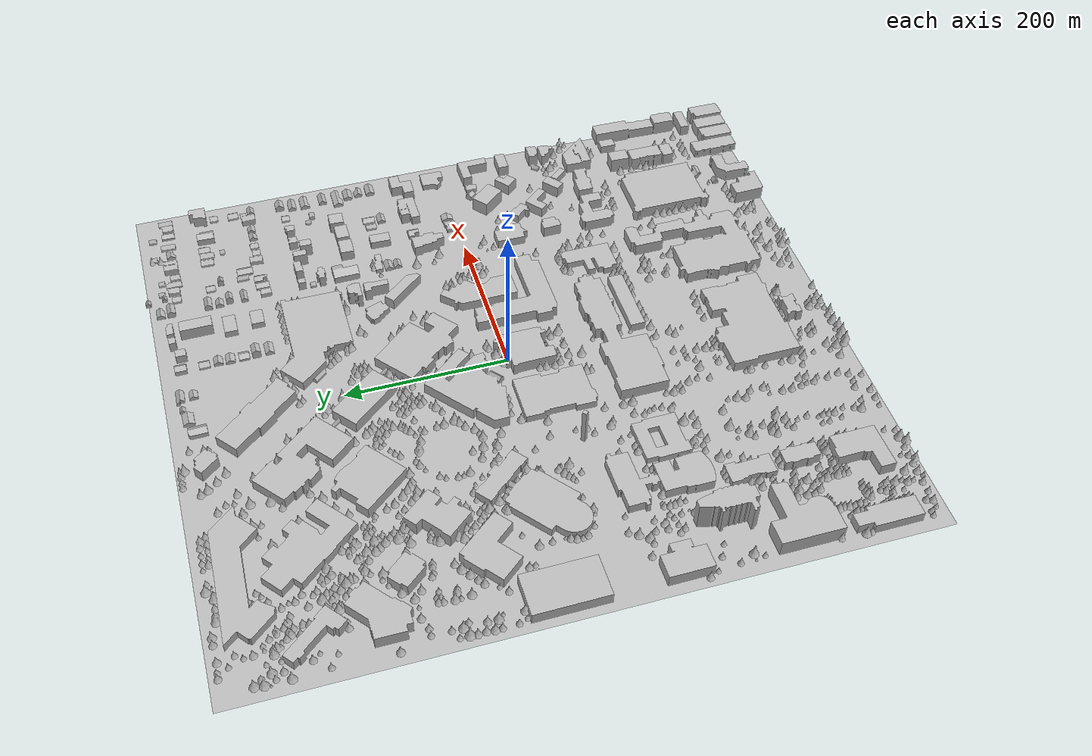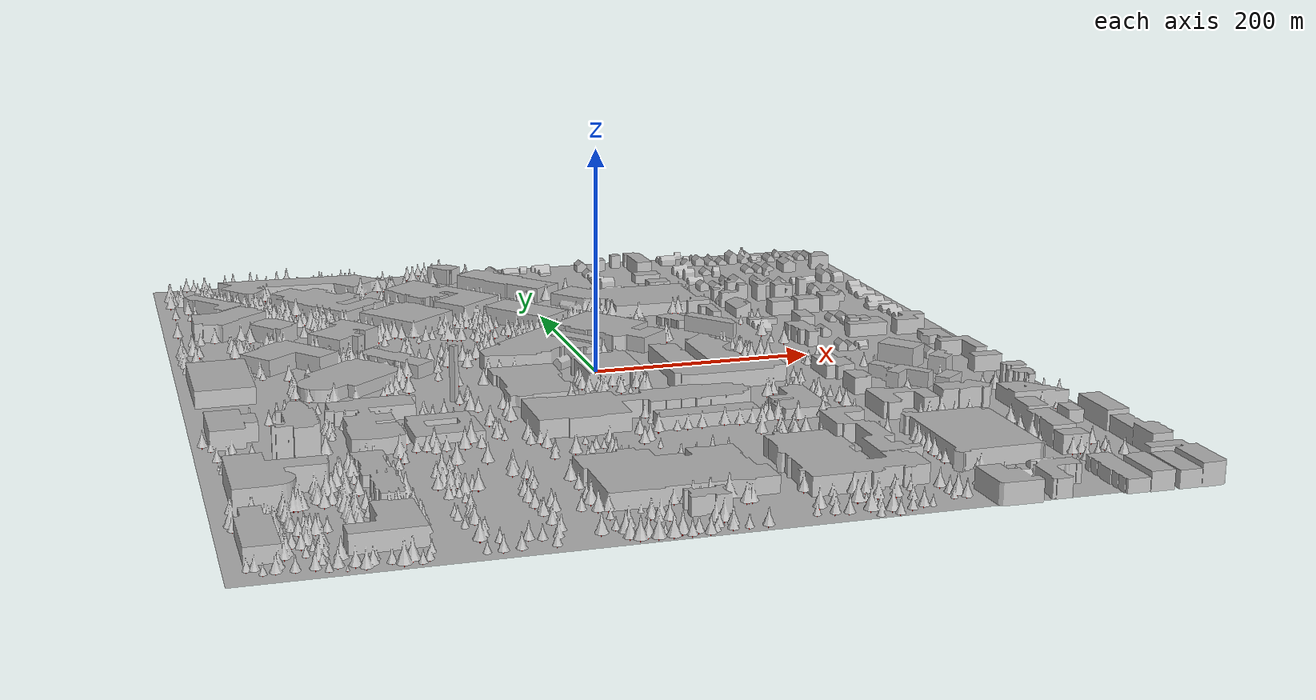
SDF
<sdf version='1.7'>
  <world name='default'>
    <plugin name="set_entity_state" filename="libgazebo_ros_state.so"/>
    <scene>
      <ambient>0.4 0.4 0.4 1</ambient>
      <background>0.7 0.7 0.7 1</background>
    </scene>
    <gravity>0 0 0</gravity>
    <magnetic_field>6e-06 2.3e-05 -4.2e-05</magnetic_field>
    <atmosphere type='adiabatic'/>
    <physics type='ode'>
      <max_step_size>0.001</max_step_size>
      <real_time_factor>1</real_time_factor>
      <real_time_update_rate>1000</real_time_update_rate>
    </physics>
    <light name='sun' type='directional'>
      <cast_shadows>1</cast_shadows>
      <pose>0 0 10 0 -0 0</pose>
      <diffuse>0.8 0.8 0.8 1</diffuse>
      <specular>0.2 0.2 0.2 1</specular>
      <attenuation>
        <range>1000</range>
        <constant>0.9</constant>
        <linear>0.01</linear>
        <quadratic>0.001</quadratic>
      </attenuation>
      <direction>-0.5 0.1 -0.9</direction>
      <spot>
        <inner_angle>0</inner_angle>
        <outer_angle>0</outer_angle>
        <falloff>0</falloff>
      </spot>
    </light>

    <model name='abu_dhabi'>
      <pose>0 0 0 0 0 0</pose>
      <static>1</static>
      <link name='terrain'>
        <visual name='visual'>
          <geometry>
            <mesh>
              <uri>model://abu_dhabi/media/terrain.dae</uri>
            </mesh>
          </geometry>
        </visual>
        <collision name='collision'>
          <geometry>
            <mesh>
              <uri>model://abu_dhabi/media/terrain.dae</uri>
            </mesh>
          </geometry>
        </collision>
      </link>
      <link name='buildings'>
        <visual name='visual'>
          <geometry>
            <mesh>
              <uri>model://abu_dhabi/media/buildings.dae</uri>
            </mesh>
          </geometry>
        </visual>

        <collision name='collision'>
          <geometry>
            <mesh>
              <uri>model://abu_dhabi/media/buildings.dae</uri>
            </mesh>
          </geometry>
        </collision>

      </link>
    </model>

    <model name="laser_0">

      <link name="laser_link">
        <visual name="laser_visual">
          <geometry>
            <box>
              <size>10 5 5</size>
            </box>
          </geometry>
          <material>
            <ambient>0 0 0 1</ambient>
            <diffuse>0 0 0 1</diffuse>
            <specular>0 0 0 0</specular>
            <emissive>1 1 0 1</emissive>
          </material>
        </visual>
        <collision name='laser_collision'>
          <laser_retro>0</laser_retro>
          <max_contacts>10</max_contacts>
          <pose>0 0 0 0 -0 0</pose>
          <geometry>
            <box>
              <size>0.02 .01 .01</size>
            </box>
          </geometry>
        </collision>
        <sensor name="skycam" type="wideanglecamera">
          <pose>0 0 2.1 0 -1.5707 0</pose>
          <camera>
            <horizontal_fov>3.1415</horizontal_fov>
            <image>
              <width>500</width>
              <height>500</height>
            </image>
            <clip>
              <near>0.1</near>
              <far>100</far>
            </clip>
            <lens>
              <type>stereographic</type>
              <scale_to_hfov>true</scale_to_hfov>
              <cutoff_angle>3.1415</cutoff_angle>
              <env_texture_size>512</env_texture_size>
            </lens>
            <distortion>
              <k1>0.0</k1>
              <k2>0.0</k2>
              <k3>0.0</k3>
              <p1>0.0</p1>
              <p2>0.0</p2>
            </distortion>
          </camera>
          <always_on>1</always_on>
          <update_rate>1</update_rate>
          <plugin name="skycam_controller" filename="libgazebo_ros_camera.so">
            <hack_baseline>0.07</hack_baseline>
          </plugin>
        </sensor>
        <!-- ray sensor -->
        <sensor name="sensor_ray" type="ray">
          <ray>
            <scan>
              <horizontal>
                <samples>16</samples>
                <resolution>1</resolution>
                <min_angle>0</min_angle>
                <max_angle>0</max_angle>
              </horizontal>
              <vertical>
                <samples>1</samples>
                <resolution>1</resolution>
                <min_angle>0.8</min_angle>
                <max_angle>0.8</max_angle>
              </vertical>
            </scan>
            <range>
              <min>0.05</min>
              <max>50.0</max>
            </range>
          </ray>
          <always_on>true</always_on>
          <update_rate>10</update_rate>
          <plugin name="laserscan" filename="libMultipathSensorPlugin.so">
            <ros>
              <namespace>/multipath</namespace>
              <remapping>~/out:=scan</remapping>
            </ros>
            <output_type>sensor_msgs/LaserScan</output_type>
            <disableNoise>0</disableNoise>
            <satNum>8</satNum>
             <satAzimuth>2.9359 3.3952 5.5647 0.2379 4.0208 1.3869 2.2305 0.6545</satAzimuth>
            <satElevation>0.7836 0.3240 1.0243 0.9085 0.4755 0.2695 1.0933 0.3891</satElevation>
          </plugin>
        </sensor>
        <self_collide>0</self_collide>
      </link>
    </model>
     <gui fullscreen='0'>
      <camera name='user_camera'>
        <pose>0 0 500 0 1.57 0</pose>
        <view_controller>orbit</view_controller>
        <projection_type>orthographic</projection_type>
      </camera>
    </gui>
  </world>
</sdf>
<!-- vim: set et fenc=utf-8 ff=unix sts=0 sw=2 ts=2 ft=xml: -->
